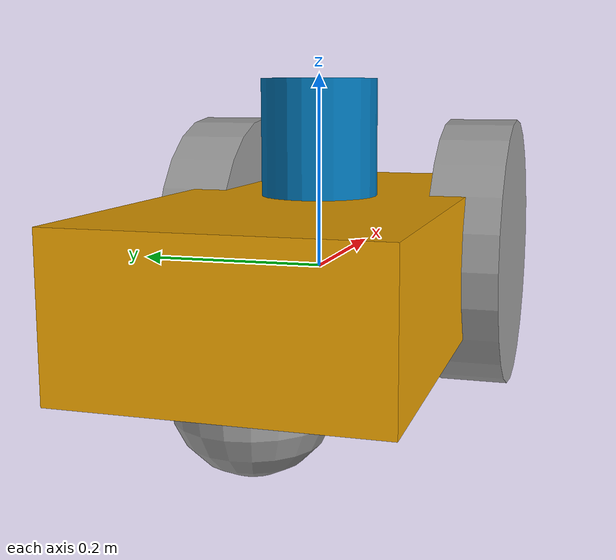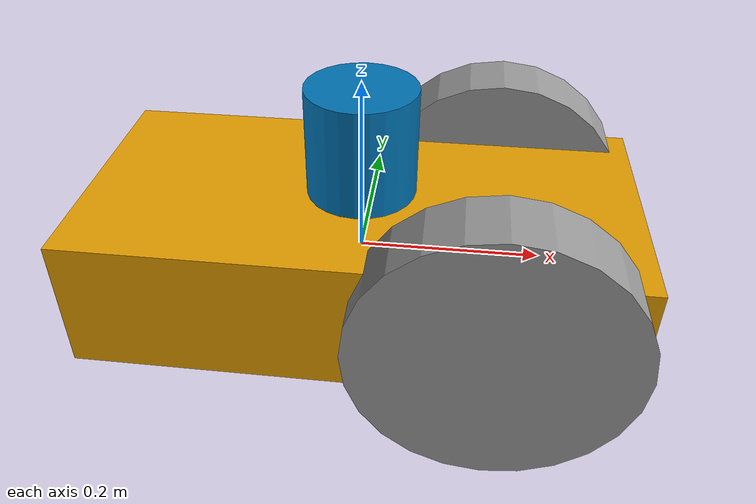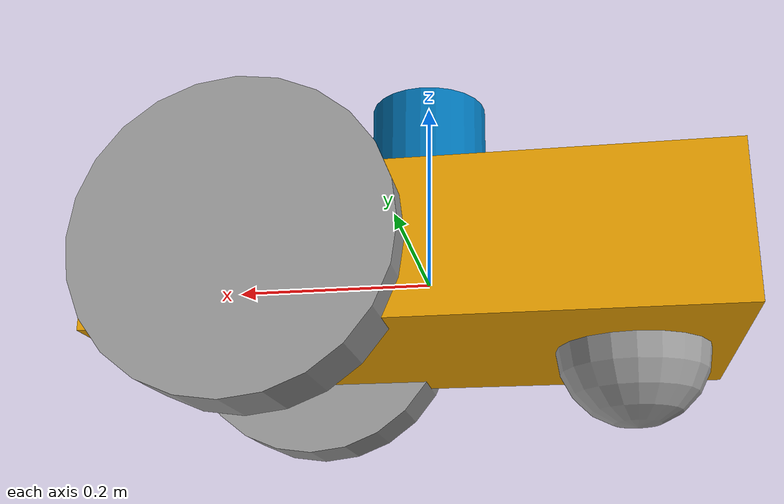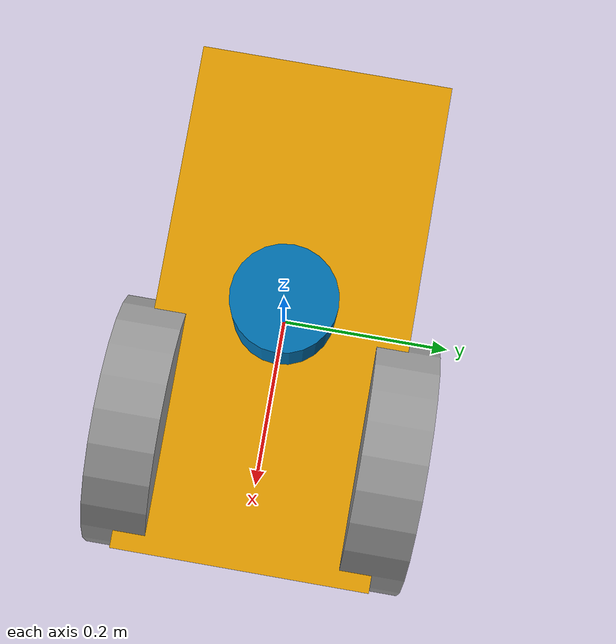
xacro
<?xml version="1.0"?>
<robot name="roscontrol" xmlns:xacro="http://ros.org/wiki/xacro">

<xacro:property name="robot_side" value="0.3" />
<xacro:property name="pi" value="3.1415" />

<xacro:include filename="wheel.xacro"/>
<xacro:include filename="lidar.xacro"/>

	<link name="base_link">
    	<visual>
      		<geometry>
        		<box size="${robot_side*2} ${robot_side} ${robot_side/2}"/>
      		</geometry>
    	</visual>
    	<collision>
      		<geometry>
        		<box size="${robot_side*2} ${robot_side} ${robot_side/2}"/>
      		</geometry>
    	</collision>
		<inertial>
			<mass value="30" />
			<inertia ixx="0.0405" ixy="0" ixz="0" iyy="0.162" iyz="0" izz="0.0405" />
		</inertial>
	</link>

	<xacro:drive_wheel location="right" parent="base_link">
		<origin xyz="${robot_side/2} ${robot_side/2} 0" rpy="0 0 0"/>
		</xacro:drive_wheel>
	<xacro:drive_wheel location="left" parent="base_link">
		<origin xyz="${robot_side/2} -${robot_side/2} 0" rpy="0 0 0"/>
		</xacro:drive_wheel>
	<xacro:caster_wheel location="back" parent="base_link">
		<origin xyz="-${2*robot_side/3} 0 -${robot_side/4+0.001}" rpy="0 0 0"/>
		</xacro:caster_wheel>
	<xacro:lidar location="top" parent="base_link"/>

	<gazebo>
    	<plugin name="gazebo_ros_control" filename="libgazebo_ros_control.so">
      		<robotNamespace>/</robotNamespace>
    	</plugin>
  	</gazebo>

</robot>

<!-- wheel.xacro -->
<robot name="wheel" xmlns:xacro="http://www.ros.org/wiki/xacro">

<xacro:property name="wheeldiam" value="0.3" />

<xacro:macro name="drive_wheel" params="location parent *origin">
	<link name="${location}_wheel">
  		<visual>
    		<origin xyz="0 0 0" rpy="${pi/2} 0 0" />
    		<geometry>
      			<cylinder radius="${wheeldiam/2}" length="${wheeldiam/4}"/>
    		</geometry>
  		</visual>
  		<collision>
    		<origin xyz="0 0 0" rpy="${pi/2} 0 0" />
    		<geometry>
      			<cylinder radius="${wheeldiam/2}" length="${wheeldiam/4}"/>
    		</geometry>
  		</collision>
		<inertial>
			<mass value="1" />
			<inertia ixx="15.0" ixy="0" ixz="0" iyy="15.0" iyz="0" izz="0.045" />
		</inertial>
	</link>
	<joint name="${location}_wheel_joint" type="continuous">
  		<axis xyz="0 1 0" rpy="0 0 0" />
  		<parent link="${parent}"/>
  		<child link="${location}_wheel"/>
		<xacro:insert_block name="origin"/>
	</joint>
	<gazebo reference="${location}_wheel">
  		<mu1 value="200.0"/>
 	 	<mu2 value="100.0"/>
  		<kp value="10000000.0" />
  		<kd value="1.0" />
  		<material>Gazebo/Grey</material>
	</gazebo>
	<transmission name="${location}_wheel_trans">
  		<type>transmission_interface/SimpleTransmission</type>
  		<actuator name="${location}_wheel_motor">
    		<mechanicalReduction>1</mechanicalReduction>
  		</actuator>
  		<joint name="${location}_wheel_joint">
    		<hardwareInterface>VelocityJointInterface</hardwareInterface>
  		</joint>
	</transmission>
</xacro:macro>

<xacro:macro name="caster_wheel" params="location parent *origin">
	<link name="${location}_wheel">
		<visual>
			<geometry>
				<sphere radius="${(wheeldiam-robot_side/2)/2}"/>
			</geometry>
		</visual>
		<collision>
			<geometry>
				<sphere radius="${(wheeldiam-robot_side/2)/2}"/>
			</geometry>
		</collision>
		<inertial>
			<mass value="1" />
			<inertia ixx="0.0025" ixy="0" ixz="0" iyy="0.0025" iyz="0" izz="0.0025" />
		</inertial>
	</link>
	<joint name="base_to_${location}_wheel" type="continuous">
		<axis xyz="0 1 0" rpy="0 0 0" />
    	<parent link="${parent}"/>
    	<child link="${location}_wheel"/>
  		<xacro:insert_block name="origin"/>
	</joint>
	<gazebo reference="${location}_wheel">
    	<mu1 value="1.0"/>
    	<mu2 value="0.5"/>
    	<kp value="10000000.0" />
    	<kd value="1.0" />
    	<material>Gazebo/Grey</material>
  	</gazebo>
</xacro:macro>

</robot>

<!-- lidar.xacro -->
<robot name="lidar" xmlns:xacro="http://www.ros.org/wiki/xacro" >

<xacro:property name="lidar_radius" value="0.06" />
<xacro:property name="lidar_height" value="0.12" />

<xacro:macro name="lidar" params="location parent">
	<link name="lidar">
		<visual>
			<geometry>
				<cylinder radius="${lidar_radius}" length="${lidar_height}" />
			</geometry>
			<origin xyz="0 0 0"/>
		</visual>
		<collision>
			<geometry>
				<cylinder radius="${lidar_radius}" length="${lidar_height}" />
			</geometry>
		</collision>
		<inertial>
			<mass value="1" />
			<inertia ixx="0.1" ixy="0" ixz="0" iyy="0.1" iyz="0" izz="0.1" />
		</inertial>
	</link>
	<gazebo reference="lidar">
		<sensor name="laser" type="ray">
			<pose>0 0 0 0 0 0</pose>
			<visualize>true</visualize>
			<update_rate>10</update_rate>
			<ray>
				<scan>
					<horizontal>
						<samples>360</samples>
						<resolution>1</resolution>
						<min_angle>-3.14</min_angle>
						<max_angle>3.14</max_angle>
					</horizontal>
				</scan>
				<range>
					<min>0.3</min>
					<max>12</max>
					<resolution>0.01</resolution>
				</range>
			</ray>
			<plugin name="laser_controller" filename="libgazebo_ros_laser.so">
				<topicName>/scan</topicName>
				<frameName>lidar</frameName>
			</plugin>
		</sensor>
	</gazebo>
	<joint name="base_to_lidar" type="fixed">
		<parent link="base_link"/>
		<child link="lidar"/>
		<origin xyz="0 0 ${(robot_side/2+lidar_height)/2}"/>
  	</joint>
</xacro:macro>

</robot>
